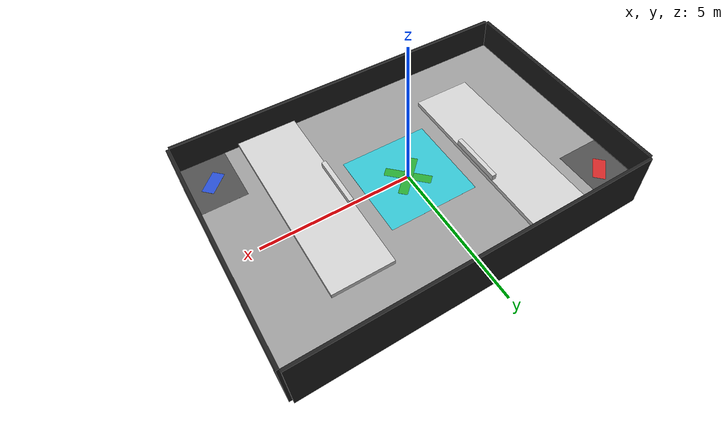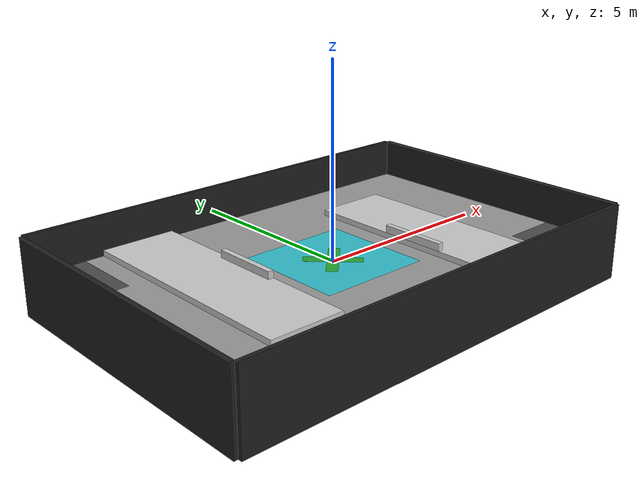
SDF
<?xml version="1.0" ?>
<sdf version="1.6">
  <world name="3v3_arena_world">
    <!-- 光源 -->
    <include>
      <uri>model://sun</uri>
    </include>

    <!-- 1. 场地底板（12m×8m，中心对齐Gazebo原点） -->
    <model name="arena_floor">
      <static>true</static>
      <link name="floor_link">
        <collision name="floor_collision">
          <geometry>
            <box>
              <size>12 8 0.1</size>
            </box>
          </geometry>
          <surface>
            <friction>
              <ode>
                <mu>1.0</mu>
                <mu2>1.0</mu2>
              </ode>
            </friction>
          </surface>
        </collision>
        <visual name="floor_visual">
          <geometry>
            <box>
              <size>12 8 0.1</size>
            </box>
          </geometry>
          <material>
            <script>
              <uri>file://media/materials/scripts/gazebo.material</uri>
              <name>Gazebo/Grey</name>
            </script>
          </material>
        </visual>
        <pose>0 0 0 0 0 0</pose>
      </link>
    </model>

    <!-- 2. 场地边框（0.5m高，黑色） -->
    <model name="arena_border">
      <static>true</static>
      <!-- 底部长边 -->
      <link name="border_long1">
        <collision name="col">
          <geometry><box><size>12 0.1 2</size></box></geometry>
        </collision>
        <visual name="vis">
          <geometry><box><size>12 0.1 2</size></box></geometry>
          <material><script><name>Gazebo/Black</name></script></material>
        </visual>
        <pose>0 -4.05 0.1 0 0 0</pose>
      </link>
      <!-- 顶部长边 -->
      <link name="border_long2">
        <collision name="col">
          <geometry><box><size>12 0.1 2</size></box></geometry>
        </collision>
        <visual name="vis">
          <geometry><box><size>12 0.1 2</size></box></geometry>
          <material><script><name>Gazebo/Black</name></script></material>
        </visual>
        <pose>0 4.05 0.1 0 0 0</pose>
      </link>
      <!-- 左侧短边 -->
      <link name="border_short1">
        <collision name="col">
          <geometry><box><size>0.1 8 2</size></box></geometry>
        </collision>
        <visual name="vis">
          <geometry><box><size>0.1 8 2</size></box></geometry>
          <material><script><name>Gazebo/Black</name></script></material>
        </visual>
        <pose>-6.05 0 0.1 0 0 0</pose>
      </link>
      <!-- 右侧短边 -->
      <link name="border_short2">
        <collision name="col">
          <geometry><box><size>0.1 8 2</size></box></geometry>
        </collision>
        <visual name="vis">
          <geometry><box><size>0.1 8 2</size></box></geometry>
          <material><script><name>Gazebo/Black</name></script></material>
        </visual>
        <pose>6.05 0 0.1 0 0 0</pose>
      </link>
    </model>

    <!-- 3. 补给区（启动区） -->
    <!-- 左侧补给区（红扳手） -->
    <model name="supply_zone_red">
      <static>true</static>
      <link name="link">
        <visual name="vis">
          <geometry><box><size>1.5 2 0.001</size></box></geometry>
          <material><script><name>Gazebo/DarkGrey</name></script></material>
          <pose>0 0 0 0 0 0</pose>
        </visual>
        <visual name="wrench_vis">
          <geometry><box><size>0.8 0.4 0.001</size></box></geometry>
          <material><script><name>Gazebo/Red</name></script></material>
          <pose>0 0 0.001 0 0 0.785</pose>
        </visual>
        <pose>-5.25 3 0.05 0 0 0</pose>
      </link>
    </model>
    <!-- 右侧补给区（蓝扳手） -->
    <model name="supply_zone_blue">
      <static>true</static>
      <link name="link">
        <visual name="vis">
          <geometry><box><size>1.5 2 0.001</size></box></geometry>
          <material><script><name>Gazebo/DarkGrey</name></script></material>
        </visual>
        <visual name="wrench_vis">
          <geometry><box><size>0.8 0.4 0.001</size></box></geometry>
          <material><script><name>Gazebo/Blue</name></script></material>
          <pose>0 0 0.001 0 0 0.785</pose>
        </visual>
        <pose>5.25 -3 0.05 0 0 0</pose>
      </link>
    </model>

    <!-- 4. 高地（底部200mm平台+顶部200mm凸台，与控制区衔接） -->
    <!-- 左侧高地 -->
    <model name="highland_left">
      <static>true</static>
      <!-- 底部主平台（2m×6.5m×0.2m） -->
      <link name="main_platform">
        <collision name="col">
          <geometry><box><size>2 6.5 0.2</size></box></geometry>
        </collision>
        <visual name="vis">
          <geometry><box><size>2 6.5 0.2</size></box></geometry>
          <material><script><name>Gazebo/LightGrey</name></script></material>
        </visual>
        <pose>-3 0.75 0.1 0 0 0</pose>
      </link>
      <!-- 顶部凸台（2m×0.2m×0.2m，与控制区衔接） -->
      <link name="top_bump">
        <collision name="col">
          <geometry><box><size>0.15 1.8 0.2</size></box></geometry>
        </collision>
        <visual name="vis">
          <geometry><box><size>0.15 1.8 0.2</size></box></geometry>
          <material><script><name>Gazebo/LightGrey</name></script></material>
        </visual>
        <pose>-2.075 0.75 0.3 0 0 0</pose> <!-- 凸台右移，与控制区左边缘贴合 -->
      </link>
      <!-- 固定连接主平台与凸台 -->
      <joint name="platform_to_bump" type="fixed">
        <parent>main_platform</parent>
        <child>top_bump</child>
        <pose>0 0 0 0 0 0</pose>
      </joint>
    </model>
    <!-- 右侧高地 -->
    <model name="highland_right">
      <static>true</static>
      <!-- 底部主平台 -->
      <link name="main_platform">
        <collision name="col">
          <geometry><box><size>2 6.5 0.2</size></box></geometry>
        </collision>
        <visual name="vis">
          <geometry><box><size>2 6.5 0.2</size></box></geometry>
          <material><script><name>Gazebo/LightGrey</name></script></material>
        </visual>
        <pose>3 -0.75 0.1 0 0 0</pose>
      </link>
      <!-- 顶部凸台（与控制区衔接） -->
      <link name="top_bump">
        <collision name="col">
          <geometry><box><size>0.15 1.8 0.2</size></box></geometry>
        </collision>
        <visual name="vis">
          <geometry><box><size>0.15 1.8 0.2</size></box></geometry>
          <material><script><name>Gazebo/LightGrey</name></script></material>
        </visual>
        <pose>2.075 -0.75 0.3 0 0 0</pose> <!-- 凸台左移，与控制区右边缘贴合 -->
      </link>
      <!-- 固定连接 -->
      <joint name="platform_to_bump" type="fixed">
        <parent>main_platform</parent>
        <child>top_bump</child>
        <pose>0 0 0 0 0 0</pose>
      </joint>
    </model>

    <!-- 5. 控制区（绿双剑，与高地凸台衔接） -->
    <model name="control_zone">
      <static>true</static>
      <link name="link">
        <visual name="vis">
          <geometry><box><size>3 3 0.001</size></box></geometry>
          <material><script><name>Gazebo/Cyan</name></script></material>
        </visual>
        <visual name="sword1_vis">
          <geometry><box><size>1.5 0.3 0.001</size></box></geometry>
          <material><script><name>Gazebo/Green</name></script></material>
          <pose>0 0 0.001 0 0 0.785</pose>
        </visual>
        <visual name="sword2_vis">
          <geometry><box><size>1.5 0.3 0.001</size></box></geometry>
          <material><script><name>Gazebo/Green</name></script></material>
          <pose>0 0 0.001 0 0 2.356</pose>
        </visual>
        <pose>0 0 0.05 0 0 0</pose> <!-- 控制区高度抬升，底部与高地凸台顶部贴合 -->
      </link>
    </model>

  </world>
</sdf>
